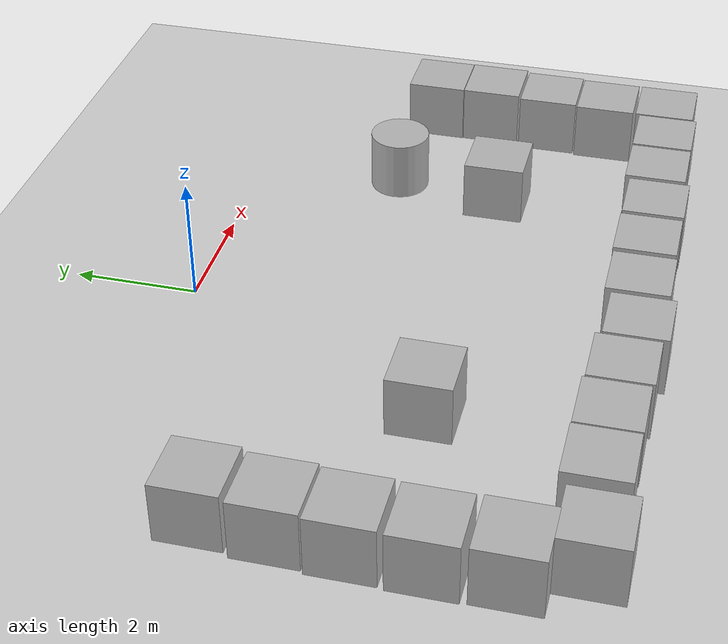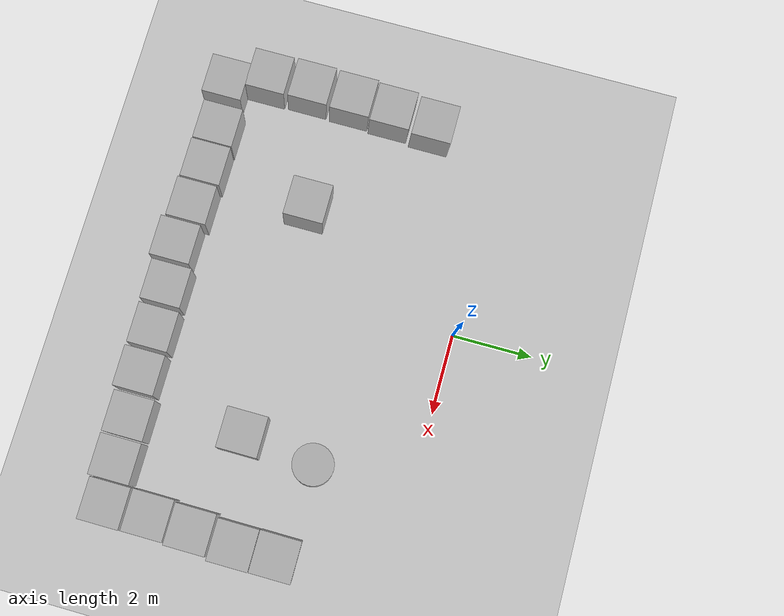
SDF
<sdf version="1.9">
 <world name="empty">
  <model name="ground_plane">
   <static>true</static>
   <link name="link">
    <collision name="collision">
     <geometry><plane><normal>0 0 1</normal><size>100 100</size></plane></geometry>
    </collision>
    <visual name="visual">
     <geometry><plane><normal>0 0 1</normal><size>100 100</size></plane></geometry>
     <material>
      <ambient>0.8 0.8 0.8 1</ambient>
      <diffuse>0.8 0.8 0.8 1</diffuse>
      <specular>0.8 0.8 0.8 1</specular>
     </material>
    </visual>
    <inertial>
     <mass>1</mass>
     <inertia><ixx>1</ixx><ixy>0</ixy><ixz>0</ixz><iyy>1</iyy><iyz>0</iyz><izz>1</izz></inertia>
    </inertial>
   </link>
  </model>
  <model name="box_6">
   <pose>6.22858 -2.70771 0.5 0 -0 0</pose>
   <link name="box_link">
    <inertial>
     <inertia><ixx>0.16666</ixx><ixy>0</ixy><ixz>0</ixz><iyy>0.16666</iyy><iyz>0</iyz><izz>0.16666</izz></inertia>
     <mass>1</mass>
    </inertial>
    <collision name="box_collision"><geometry><box><size>1 1 1</size></box></geometry></collision>
    <visual name="box_visual">
     <geometry><box><size>1 1 1</size></box></geometry>
     <material>
      <ambient>0.3 0.3 0.3 1</ambient>
      <diffuse>0.7 0.7 0.7 1</diffuse>
      <specular>1 1 1 1</specular>
     </material>
    </visual>
   </link>
   <static>false</static>
  </model>
  <model name="box_7">
   <pose>6.23565 -3.7182 0.5 0 -0 0</pose>
   <link name="box_link">
    <inertial>
     <inertia><ixx>0.16666</ixx><ixy>0</ixy><ixz>0</ixz><iyy>0.16666</iyy><iyz>0</iyz><izz>0.16666</izz></inertia>
     <mass>1</mass>
    </inertial>
    <collision name="box_collision"><geometry><box><size>1 1 1</size></box></geometry></collision>
    <visual name="box_visual">
     <geometry><box><size>1 1 1</size></box></geometry>
     <material>
      <ambient>0.3 0.3 0.3 1</ambient>
      <diffuse>0.7 0.7 0.7 1</diffuse>
      <specular>1 1 1 1</specular>
     </material>
    </visual>
   </link>
   <static>false</static>
  </model>
  <model name="box_8">
   <pose>6.1657 -4.7642 0.5 0 -0 0</pose>
   <link name="box_link">
    <inertial>
     <inertia><ixx>0.16666</ixx><ixy>0</ixy><ixz>0</ixz><iyy>0.16666</iyy><iyz>0</iyz><izz>0.16666</izz></inertia>
     <mass>1</mass>
    </inertial>
    <collision name="box_collision"><geometry><box><size>1 1 1</size></box></geometry></collision>
    <visual name="box_visual">
     <geometry><box><size>1 1 1</size></box></geometry>
     <material>
      <ambient>0.3 0.3 0.3 1</ambient>
      <diffuse>0.7 0.7 0.7 1</diffuse>
      <specular>1 1 1 1</specular>
     </material>
    </visual>
   </link>
   <static>false</static>
  </model>
  <model name="box_24">
   <pose>-4.92357 -1.79655 0.5 0 -0 0</pose>
   <link name="box_link">
    <inertial>
     <inertia><ixx>0.16666</ixx><ixy>0</ixy><ixz>0</ixz><iyy>0.16666</iyy><iyz>0</iyz><izz>0.16666</izz></inertia>
     <mass>1</mass>
    </inertial>
    <collision name="box_collision"><geometry><box><size>1 1 1</size></box></geometry></collision>
    <visual name="box_visual">
     <geometry><box><size>1 1 1</size></box></geometry>
     <material>
      <ambient>0.3 0.3 0.3 1</ambient>
      <diffuse>0.7 0.7 0.7 1</diffuse>
      <specular>1 1 1 1</specular>
     </material>
    </visual>
   </link>
   <static>false</static>
  </model>
  <model name="box_25">
   <pose>-4.99469 -2.88184 0.5 0 -0 0</pose>
   <link name="box_link">
    <inertial>
     <inertia><ixx>0.16666</ixx><ixy>0</ixy><ixz>0</ixz><iyy>0.16666</iyy><iyz>0</iyz><izz>0.16666</izz></inertia>
     <mass>1</mass>
    </inertial>
    <collision name="box_collision"><geometry><box><size>1 1 1</size></box></geometry></collision>
    <visual name="box_visual">
     <geometry><box><size>1 1 1</size></box></geometry>
     <material>
      <ambient>0.3 0.3 0.3 1</ambient>
      <diffuse>0.7 0.7 0.7 1</diffuse>
      <specular>1 1 1 1</specular>
     </material>
    </visual>
   </link>
   <static>false</static>
  </model>
  <model name="box_26">
   <pose>-5.04236 -3.92055 0.5 0 -0 0</pose>
   <link name="box_link">
    <inertial>
     <inertia><ixx>0.16666</ixx><ixy>0</ixy><ixz>0</ixz><iyy>0.16666</iyy><iyz>0</iyz><izz>0.16666</izz></inertia>
     <mass>1</mass>
    </inertial>
    <collision name="box_collision"><geometry><box><size>1 1 1</size></box></geometry></collision>
    <visual name="box_visual">
     <geometry><box><size>1 1 1</size></box></geometry>
     <material>
      <ambient>0.3 0.3 0.3 1</ambient>
      <diffuse>0.7 0.7 0.7 1</diffuse>
      <specular>1 1 1 1</specular>
     </material>
    </visual>
   </link>
   <static>false</static>
  </model>
  <model name="box_27">
   <pose>-5.06868 -5.00835 0.5 0 -0 0</pose>
   <link name="box_link">
    <inertial>
     <inertia><ixx>0.16666</ixx><ixy>0</ixy><ixz>0</ixz><iyy>0.16666</iyy><iyz>0</iyz><izz>0.16666</izz></inertia>
     <mass>1</mass>
    </inertial>
    <collision name="box_collision"><geometry><box><size>1 1 1</size></box></geometry></collision>
    <visual name="box_visual">
     <geometry><box><size>1 1 1</size></box></geometry>
     <material>
      <ambient>0.3 0.3 0.3 1</ambient>
      <diffuse>0.7 0.7 0.7 1</diffuse>
      <specular>1 1 1 1</specular>
     </material>
    </visual>
   </link>
   <static>false</static>
  </model>
  <model name="box_28">
   <pose>-5.0497 -6.10238 0.5 0 -0 0</pose>
   <link name="box_link">
    <inertial>
     <inertia><ixx>0.16666</ixx><ixy>0</ixy><ixz>0</ixz><iyy>0.16666</iyy><iyz>0</iyz><izz>0.16666</izz></inertia>
     <mass>1</mass>
    </inertial>
    <collision name="box_collision"><geometry><box><size>1 1 1</size></box></geometry></collision>
    <visual name="box_visual">
     <geometry><box><size>1 1 1</size></box></geometry>
     <material>
      <ambient>0.3 0.3 0.3 1</ambient>
      <diffuse>0.7 0.7 0.7 1</diffuse>
      <specular>1 1 1 1</specular>
     </material>
    </visual>
   </link>
   <static>false</static>
  </model>
  <model name="box_29">
   <pose>6.12407 -5.79524 0.5 0 -0 0</pose>
   <link name="box_link">
    <inertial>
     <inertia><ixx>0.16666</ixx><ixy>0</ixy><ixz>0</ixz><iyy>0.16666</iyy><iyz>0</iyz><izz>0.16666</izz></inertia>
     <mass>1</mass>
    </inertial>
    <collision name="box_collision"><geometry><box><size>1 1 1</size></box></geometry></collision>
    <visual name="box_visual">
     <geometry><box><size>1 1 1</size></box></geometry>
     <material>
      <ambient>0.3 0.3 0.3 1</ambient>
      <diffuse>0.7 0.7 0.7 1</diffuse>
      <specular>1 1 1 1</specular>
     </material>
    </visual>
   </link>
   <static>false</static>
  </model>
  <model name="box_30">
   <pose>6.13132 -6.8447 0.5 0 -0 0</pose>
   <link name="box_link">
    <inertial>
     <inertia><ixx>0.16666</ixx><ixy>0</ixy><ixz>0</ixz><iyy>0.16666</iyy><iyz>0</iyz><izz>0.16666</izz></inertia>
     <mass>1</mass>
    </inertial>
    <collision name="box_collision"><geometry><box><size>1 1 1</size></box></geometry></collision>
    <visual name="box_visual">
     <geometry><box><size>1 1 1</size></box></geometry>
     <material>
      <ambient>0.3 0.3 0.3 1</ambient>
      <diffuse>0.7 0.7 0.7 1</diffuse>
      <specular>1 1 1 1</specular>
     </material>
    </visual>
   </link>
   <static>false</static>
  </model>
  <model name="box_31">
   <pose>5.09836 -6.91237 0.5 0 -0 0</pose>
   <link name="box_link">
    <inertial>
     <inertia><ixx>0.16666</ixx><ixy>0</ixy><ixz>0</ixz><iyy>0.16666</iyy><iyz>0</iyz><izz>0.16666</izz></inertia>
     <mass>1</mass>
    </inertial>
    <collision name="box_collision"><geometry><box><size>1 1 1</size></box></geometry></collision>
    <visual name="box_visual">
     <geometry><box><size>1 1 1</size></box></geometry>
     <material>
      <ambient>0.3 0.3 0.3 1</ambient>
      <diffuse>0.7 0.7 0.7 1</diffuse>
      <specular>1 1 1 1</specular>
     </material>
    </visual>
   </link>
   <static>false</static>
  </model>
  <model name="box_32">
   <pose>4.05564 -6.91326 0.5 0 -0 0</pose>
   <link name="box_link">
    <inertial>
     <inertia><ixx>0.16666</ixx><ixy>0</ixy><ixz>0</ixz><iyy>0.16666</iyy><iyz>0</iyz><izz>0.16666</izz></inertia>
     <mass>1</mass>
    </inertial>
    <collision name="box_collision"><geometry><box><size>1 1 1</size></box></geometry></collision>
    <visual name="box_visual">
     <geometry><box><size>1 1 1</size></box></geometry>
     <material>
      <ambient>0.3 0.3 0.3 1</ambient>
      <diffuse>0.7 0.7 0.7 1</diffuse>
      <specular>1 1 1 1</specular>
     </material>
    </visual>
   </link>
   <static>false</static>
  </model>
  <model name="box_33">
   <pose>2.97347 -6.99341 0.5 0 -0 0</pose>
   <link name="box_link">
    <inertial>
     <inertia><ixx>0.16666</ixx><ixy>0</ixy><ixz>0</ixz><iyy>0.16666</iyy><iyz>0</iyz><izz>0.16666</izz></inertia>
     <mass>1</mass>
    </inertial>
    <collision name="box_collision"><geometry><box><size>1 1 1</size></box></geometry></collision>
    <visual name="box_visual">
     <geometry><box><size>1 1 1</size></box></geometry>
     <material>
      <ambient>0.3 0.3 0.3 1</ambient>
      <diffuse>0.7 0.7 0.7 1</diffuse>
      <specular>1 1 1 1</specular>
     </material>
    </visual>
   </link>
   <static>false</static>
  </model>
  <model name="box_34">
   <pose>1.89461 -6.98248 0.5 0 -0 0</pose>
   <link name="box_link">
    <inertial>
     <inertia><ixx>0.16666</ixx><ixy>0</ixy><ixz>0</ixz><iyy>0.16666</iyy><iyz>0</iyz><izz>0.16666</izz></inertia>
     <mass>1</mass>
    </inertial>
    <collision name="box_collision"><geometry><box><size>1 1 1</size></box></geometry></collision>
    <visual name="box_visual">
     <geometry><box><size>1 1 1</size></box></geometry>
     <material>
      <ambient>0.3 0.3 0.3 1</ambient>
      <diffuse>0.7 0.7 0.7 1</diffuse>
      <specular>1 1 1 1</specular>
     </material>
    </visual>
   </link>
   <static>false</static>
  </model>
  <model name="box_35">
   <pose>0.79959 -7.00351 0.5 0 -0 0</pose>
   <link name="box_link">
    <inertial>
     <inertia><ixx>0.16666</ixx><ixy>0</ixy><ixz>0</ixz><iyy>0.16666</iyy><iyz>0</iyz><izz>0.16666</izz></inertia>
     <mass>1</mass>
    </inertial>
    <collision name="box_collision"><geometry><box><size>1 1 1</size></box></geometry></collision>
    <visual name="box_visual">
     <geometry><box><size>1 1 1</size></box></geometry>
     <material>
      <ambient>0.3 0.3 0.3 1</ambient>
      <diffuse>0.7 0.7 0.7 1</diffuse>
      <specular>1 1 1 1</specular>
     </material>
    </visual>
   </link>
   <static>false</static>
  </model>
  <model name="box_36">
   <pose>-0.288194 -7.10821 0.5 0 -0 0</pose>
   <link name="box_link">
    <inertial>
     <inertia><ixx>0.16666</ixx><ixy>0</ixy><ixz>0</ixz><iyy>0.16666</iyy><iyz>0</iyz><izz>0.16666</izz></inertia>
     <mass>1</mass>
    </inertial>
    <collision name="box_collision"><geometry><box><size>1 1 1</size></box></geometry></collision>
    <visual name="box_visual">
     <geometry><box><size>1 1 1</size></box></geometry>
     <material>
      <ambient>0.3 0.3 0.3 1</ambient>
      <diffuse>0.7 0.7 0.7 1</diffuse>
      <specular>1 1 1 1</specular>
     </material>
    </visual>
   </link>
   <static>false</static>
  </model>
  <model name="box_37">
   <pose>-1.33272 -7.01143 0.5 0 -0 0</pose>
   <link name="box_link">
    <inertial>
     <inertia><ixx>0.16666</ixx><ixy>0</ixy><ixz>0</ixz><iyy>0.16666</iyy><iyz>0</iyz><izz>0.16666</izz></inertia>
     <mass>1</mass>
    </inertial>
    <collision name="box_collision"><geometry><box><size>1 1 1</size></box></geometry></collision>
    <visual name="box_visual">
     <geometry><box><size>1 1 1</size></box></geometry>
     <material>
      <ambient>0.3 0.3 0.3 1</ambient>
      <diffuse>0.7 0.7 0.7 1</diffuse>
      <specular>1 1 1 1</specular>
     </material>
    </visual>
   </link>
   <static>false</static>
  </model>
  <model name="box_38">
   <pose>-2.36921 -6.97202 0.5 0 -0 0</pose>
   <link name="box_link">
    <inertial>
     <inertia><ixx>0.16666</ixx><ixy>0</ixy><ixz>0</ixz><iyy>0.16666</iyy><iyz>0</iyz><izz>0.16666</izz></inertia>
     <mass>1</mass>
    </inertial>
    <collision name="box_collision"><geometry><box><size>1 1 1</size></box></geometry></collision>
    <visual name="box_visual">
     <geometry><box><size>1 1 1</size></box></geometry>
     <material>
      <ambient>0.3 0.3 0.3 1</ambient>
      <diffuse>0.7 0.7 0.7 1</diffuse>
      <specular>1 1 1 1</specular>
     </material>
    </visual>
   </link>
   <static>false</static>
  </model>
  <model name="box_39">
   <pose>-3.39624 -6.95954 0.5 0 -0 0</pose>
   <link name="box_link">
    <inertial>
     <inertia><ixx>0.16666</ixx><ixy>0</ixy><ixz>0</ixz><iyy>0.16666</iyy><iyz>0</iyz><izz>0.16666</izz></inertia>
     <mass>1</mass>
    </inertial>
    <collision name="box_collision"><geometry><box><size>1 1 1</size></box></geometry></collision>
    <visual name="box_visual">
     <geometry><box><size>1 1 1</size></box></geometry>
     <material>
      <ambient>0.3 0.3 0.3 1</ambient>
      <diffuse>0.7 0.7 0.7 1</diffuse>
      <specular>1 1 1 1</specular>
     </material>
    </visual>
   </link>
   <static>false</static>
  </model>
  <model name="box_40">
   <pose>-4.61406 -7.09221 0.5 0 -0 0</pose>
   <link name="box_link">
    <inertial>
     <inertia><ixx>0.16666</ixx><ixy>0</ixy><ixz>0</ixz><iyy>0.16666</iyy><iyz>0</iyz><izz>0.16666</izz></inertia>
     <mass>1</mass>
    </inertial>
    <collision name="box_collision"><geometry><box><size>1 1 1</size></box></geometry></collision>
    <visual name="box_visual">
     <geometry><box><size>1 1 1</size></box></geometry>
     <material>
      <ambient>0.3 0.3 0.3 1</ambient>
      <diffuse>0.7 0.7 0.7 1</diffuse>
      <specular>1 1 1 1</specular>
     </material>
    </visual>
   </link>
   <static>false</static>
  </model>
  <model name="box_41">
   <pose>-2.12213 -4.28298 0.5 0 -0 0</pose>
   <link name="box_link">
    <inertial>
     <inertia><ixx>0.16666</ixx><ixy>0</ixy><ixz>0</ixz><iyy>0.16666</iyy><iyz>0</iyz><izz>0.16666</izz></inertia>
     <mass>1</mass>
    </inertial>
    <collision name="box_collision"><geometry><box><size>1 1 1</size></box></geometry></collision>
    <visual name="box_visual">
     <geometry><box><size>1 1 1</size></box></geometry>
     <material>
      <ambient>0.3 0.3 0.3 1</ambient>
      <diffuse>0.7 0.7 0.7 1</diffuse>
      <specular>1 1 1 1</specular>
     </material>
    </visual>
   </link>
   <static>false</static>
  </model>
  <model name="box_42">
   <pose>3.70819 -4.23981 0.5 0 -0 0</pose>
   <link name="box_link">
    <inertial>
     <inertia><ixx>0.16666</ixx><ixy>0</ixy><ixz>0</ixz><iyy>0.16666</iyy><iyz>0</iyz><izz>0.16666</izz></inertia>
     <mass>1</mass>
    </inertial>
    <collision name="box_collision"><geometry><box><size>1 1 1</size></box></geometry></collision>
    <visual name="box_visual">
     <geometry><box><size>1 1 1</size></box></geometry>
     <material>
      <ambient>0.3 0.3 0.3 1</ambient>
      <diffuse>0.7 0.7 0.7 1</diffuse>
      <specular>1 1 1 1</specular>
     </material>
    </visual>
   </link>
   <static>false</static>
  </model>
  <model name="cylinder">
   <pose>3.9849 -2.44097 0.5 0 -0 0</pose>
   <link name="cylinder_link">
    <inertial>
     <inertia>
      <ixx>0.14580000000000001</ixx>
      <ixy>0</ixy>
      <ixz>0</ixz>
      <iyy>0.14580000000000001</iyy>
      <iyz>0</iyz>
      <izz>0.125</izz>
     </inertia>
     <mass>1</mass>
    </inertial>
    <collision name="cylinder_collision">
     <geometry><cylinder><radius>0.5</radius><length>1</length></cylinder></geometry>
    </collision>
    <visual name="cylinder_visual">
     <geometry><cylinder><radius>0.5</radius><length>1</length></cylinder></geometry>
     <material>
      <ambient>0.3 0.3 0.3 1</ambient>
      <diffuse>0.7 0.7 0.7 1</diffuse>
      <specular>1 1 1 1</specular>
     </material>
    </visual>
   </link>
   <static>false</static>
  </model>
 </world>
</sdf>
